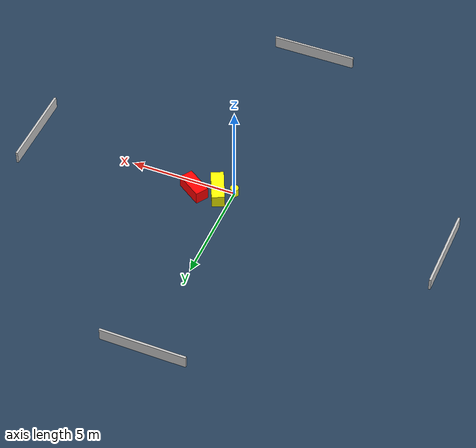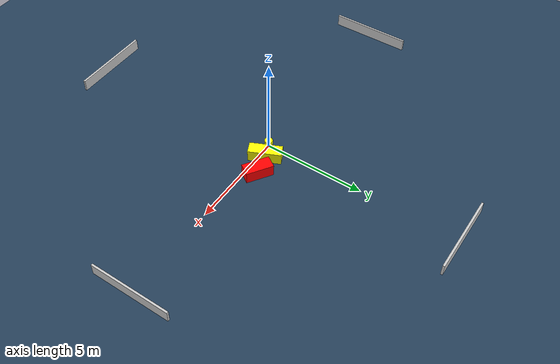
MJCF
<?xml version="1.0" ?>
<mujoco model="generated_environment">
  <option timestep="0.01" integrator="RK4" cone="elliptic"/>
  <default>
    <geom density="1"/>
  </default>
  <asset>
    <texture builtin="gradient" height="3072" name="skybox" rgb1="0.3 0.5 0.7" rgb2="0 0 0" type="skybox" width="512"/>
    <texture builtin="checker" height="300" name="groundplane" rgb1="0.2 0.3 0.4" rgb2="0.1 0.2 0.3" type="2d" width="300"/>
    <material name="groundplane" reflectance="0.2" texrepeat="5 5" texture="groundplane"/>
  </asset>
  <worldbody>
    <light dir="0 0 -1" directional="true" pos="0 0 1.5"/>
    <geom condim="3" friction="0.5 0.005 0.001" material="groundplane" name="floor" pos="0 0 0" size="0 0 0.05" type="plane"/>
    <body name="walls">
      <geom name="wall_1" condim="4" pos="-10.0 0.0 0.3" rgba="0.800000011920929 0.800000011920929 0.800000011920929 1.0" size="0.05 2.0 0.3" type="box"/>
      <geom name="wall_2" condim="4" pos="10.0 0.0 0.3" rgba="0.800000011920929 0.800000011920929 0.800000011920929 1.0" size="0.05 2.0 0.3" type="box"/>
      <geom name="wall_3" condim="4" pos="0.0 -10.0 0.3" rgba="0.800000011920929 0.800000011920929 0.800000011920929 1.0" size="2.0 0.05 0.3" type="box"/>
      <geom name="wall_4" condim="4" pos="0.0 10.0 0.3" rgba="0.800000011920929 0.800000011920929 0.800000011920929 1.0" size="2.0 0.05 0.3" type="box"/>
    </body>
    <body name="robot">
      <joint name="joint_x" type="slide" pos="0 0 0" axis="1 0 0"/>
      <joint name="joint_y" type="slide" pos="0 0 0" axis="0 1 0"/>
      <geom name="robot" type="cylinder" pos="0.0 0.0 0.2" size="0.2 0.2 0.0" mass="5.0" friction="1.0 0.005 0.0001" condim="4" rgba="1.0 1.0 0.0 1.0"/>
    </body>
    <body name="obstacle_1_movable">
      <geom name="obstacle_1_movable" condim="4" pos="0.7056374939823843 0.2807650304536772 0.3" euler="0 0 204.7028686814958" friction="0.0 0.005 0.001" rgba="1.0 1.0 0.0 1.0" size="0.3001181452187758 0.7967367953655939 0.3" type="box" mass="0.1"/>
      <joint type="free"/>
    </body>
    <body name="obstacle_2_static">
      <geom name="obstacle_2_static" condim="4" pos="1.7500232368676267 0.5695476288982247 0.3" euler="0 0 146.43073883949677" friction="0.0 0.005 0.001" rgba="1.0 0.0 0.0 1.0" size="0.6766194603737222 0.3165071658782296 0.3" type="box"/>
    </body>
  </worldbody>
  <actuator>
    <motor name="actuator_x" joint="joint_x" gear="1" ctrlrange="-1 1"/>
    <motor name="actuator_y" joint="joint_y" gear="1" ctrlrange="-1 1"/>
  </actuator>
</mujoco>
